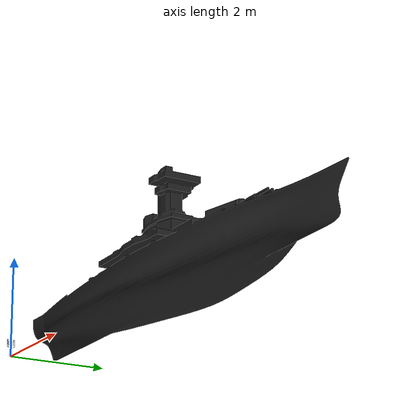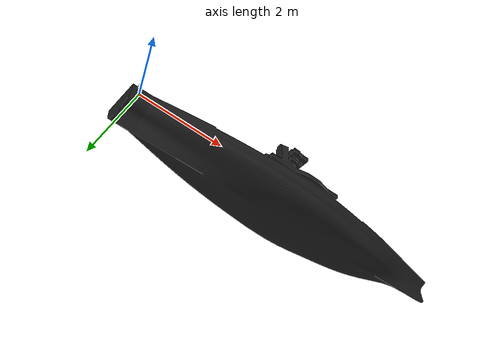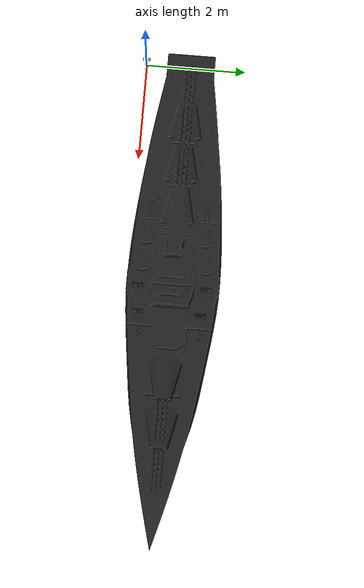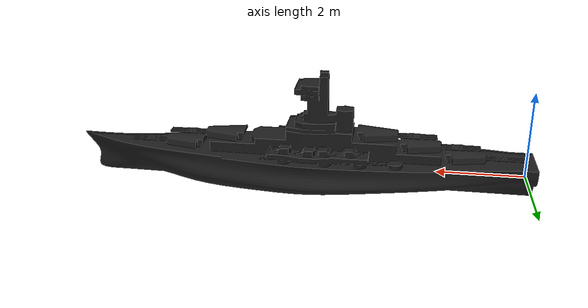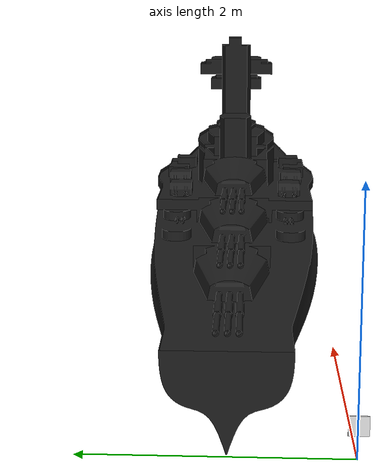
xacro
<?xml version="1.0" ?>
<robot name="battleship_tagged" xmlns:xacro="http://ros.org/wiki/xacro">
  <gazebo>
    <static>true</static>
  </gazebo>

  <link name="base_footprint"/>

  <joint name="base_joint" type="fixed">
    <parent link="base_footprint"/>
    <child link="base_link"/>
    <origin xyz="0.0 0.0 0.0" rpy="0 0 0"/>
  </joint>

  <link name="base_link">
    <visual>
      <origin xyz="0.0 0.0 0.0" rpy="0 0 0"/>
      <geometry>
        <mesh filename="package://dse_turtlebot_descriptions/meshes/bases/battleship_hull.stl" scale="0.001 0.001 0.001"/>
      </geometry>
      <material name="light_black"/>
    </visual>

    <collision>
      <origin xyz="-0.032 0 0.070" rpy="0 0 0"/>
      <geometry>
        <box size="0.140 0.140 0.143"/>
      </geometry>
    </collision>
  </link>

  <gazebo reference="aruco_tag_link">
      <material>Gazebo/FlatBlack</material>
  </gazebo>

  <gazebo reference="aruco_tag_backing_link">
      <material>Gazebo/White</material>
  </gazebo>

  <joint name="aruco_tag_joint" type="fixed">
    <parent link="base_link"/>
    <child link="aruco_tag_link"/>
    <origin xyz="-0.032 0 0.068" rpy="0 0 0"/>
  </joint>

  <link name="aruco_tag_link">
    <collision>
      <origin xyz="0 -0.05 0.15" rpy="1.571 0 1.571"/>
      <geometry>
          <box size="0.01 0.1 0.1" />
      </geometry>
    </collision>

    <visual>
      <origin xyz="0 -0.05 0.15" rpy="1.571 0 1.571"/>
      <geometry>
          <mesh filename="package://dse_turtlebot_descriptions/meshes/aruco/aruco_marker_9.stl" scale="0.001 0.001 0.001"/>
      </geometry>
    </visual>
  </link>

  <joint name="aruco_tag_backing_joint" type="fixed">
    <parent link="base_link"/>
    <child link="aruco_tag_backing_link"/>
    <origin xyz="-0.032 0 0.068" rpy="0 0 0"/>
  </joint>

  <link name="aruco_tag_backing_link">
    <collision>
      <origin xyz="0 -0.05 0.15" rpy="1.571 0 1.571"/>
      <geometry>
          <box size="0.1 0.1 0.01" />
      </geometry>
    </collision>

    <visual>
      <origin xyz="0.0049 -0 0.2" rpy="1.571 0 1.571"/>
      <geometry>
          <box size="0.15 0.15 0.01" />
      </geometry>
    </visual>
  </link>
</robot>
